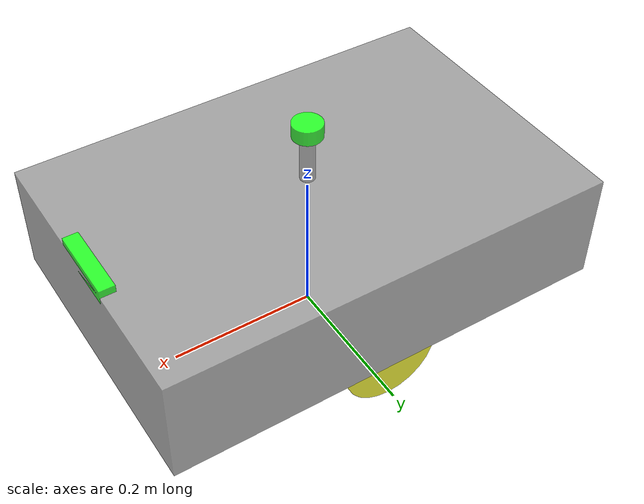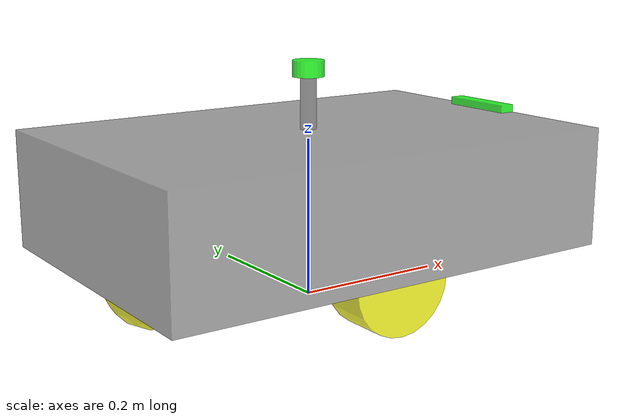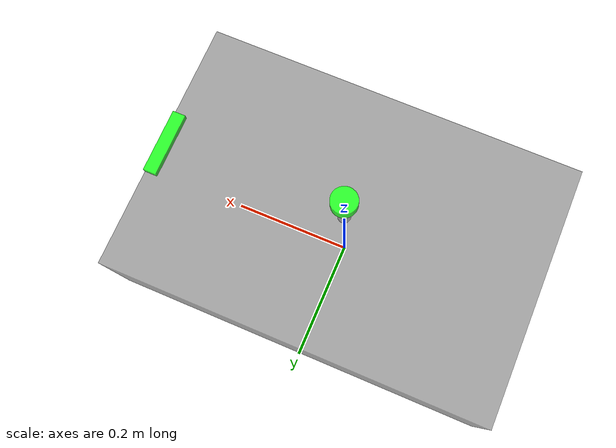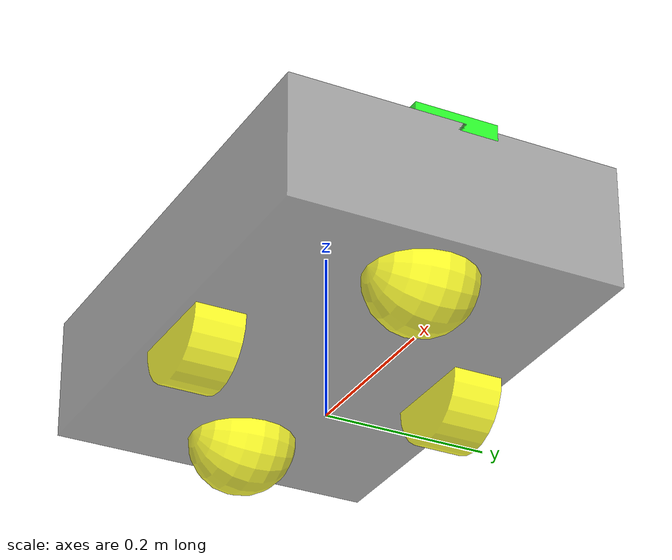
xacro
<?xml version="1.0"?>
<robot xmlns:xacro="http://www.ros.org/wiki/xacro" name="robot_name">
    <xacro:arg name="prefix" default=""/>
    <xacro:arg name="namespace" default=""/>
    <xacro:arg name="controller_params" default="$(find amr_description)/config/amr_ros2_controller.yaml"/>

    <!-- 几何参数：默认值与 config/amr_v1.yaml 一致，生成脚本从规格文件覆盖传入 -->
    <xacro:arg name="car_length" default="0.6"/>
    <xacro:arg name="car_width" default="0.4"/>
    <xacro:arg name="car_height" default="0.15"/>
    <xacro:arg name="wheel_radius" default="0.064"/>
    <xacro:arg name="wheel_length" default="0.06"/>
    <xacro:arg name="wheel_mass" default="1.0"/>

    <!-- 将 xacro arg 转换成 property，供后续表达式使用 -->
    <xacro:property name="prefix" value="$(arg prefix)"/>
    <xacro:property name="namespace" value="$(arg namespace)"/>
    <xacro:property name="controller_params" value="$(arg controller_params)"/>

    <xacro:property name="car_length" value="$(arg car_length)"/>
    <xacro:property name="car_width" value="$(arg car_width)"/>
    <xacro:property name="car_height" value="$(arg car_height)"/>
    <xacro:property name="wheel_radius" value="$(arg wheel_radius)"/>
    <xacro:property name="wheel_length" value="$(arg wheel_length)"/>
    <xacro:property name="wheel_mass" value="$(arg wheel_mass)"/>

    <!--基础部分-->
    <xacro:include filename="$(find amr_description)/urdf/base.urdf.xacro"/>
    <!--传感器部分-->
    <xacro:include filename="$(find amr_description)/urdf/sensor/imu.urdf.xacro"/>
    <xacro:include filename="$(find amr_description)/urdf/sensor/camera.urdf.xacro"/>
    <xacro:include filename="$(find amr_description)/urdf/sensor/laser.urdf.xacro"/>
    <!--执行器部分-->
    <xacro:include filename="$(find amr_description)/urdf/actuator/wheel.urdf.xacro"/>
    <xacro:include filename="$(find amr_description)/urdf/actuator/caster.urdf.xacro"/>
    <!--插件部分-->
    <xacro:include filename="$(find amr_description)/urdf/plugins/gazebo_sensor_plugin.xacro"/>
    <xacro:include filename="$(find amr_description)/urdf/amr.ros2_control.xacro"/>

    <!-- PI 值 -->
    <xacro:property name="PI" value="3.1415927"/>
    <!-- 轮胎关节平移量（由几何参数推导，勿手改） -->
    <xacro:property name="wheel_joint_y" value="${car_width / 2 - wheel_length / 2 - 0.01}"/>
    <xacro:property name="wheel_joint_z" value="${-car_height / 2}"/>

    <!-- 全局材质 -->
    <material name="gray">
        <color rgba="0.5 0.5 0.5 0.7"/>
    </material>
    <material name="black">
        <color rgba="0.0 0.0 0.0 0.5"/>
    </material>
    <material name="red">
        <color rgba="1.0 0.0 0.0 0.5"/>
    </material>
     <material name="yellow">
        <color rgba="1.0 1.0 0.0 0.8"/>
    </material>

    <!-- 调用底盘，统一使用全局尺寸 -->
    <xacro:base_xacro length="${car_length}" width="${car_width}" height="${car_height}" wheel_radius="${wheel_radius}" prefix="${prefix}"/>
    <!-- 调用传感器模块 -->
    <xacro:imu_xacro imu_name="imu" length="0.02" width="0.02" height="0.02" xyz="0 0 0.02" prefix="${prefix}"/>
    <xacro:camera_xacro length="0.02" width="0.1" height="0.02" xyz="${car_length / 2 - 0.01} 0 ${car_height / 2}" prefix="${prefix}"/>
    <xacro:laser_xacro radius="0.02" length="0.02" xyz="0 0 0.1" prefix="${prefix}"/>
    <!-- 调用执行器模块 -->
    <xacro:wheel_xacro wheel_name="left" radius="${wheel_radius}" length="${wheel_length}" xyz="0 ${wheel_joint_y} ${wheel_joint_z}" prefix="${prefix}" mass="${wheel_mass}"/>
    <xacro:wheel_xacro wheel_name="right" radius="${wheel_radius}" length="${wheel_length}" xyz="0 ${-wheel_joint_y} ${wheel_joint_z}" prefix="${prefix}" mass="${wheel_mass}"/>
    <xacro:caster_xacro caster_name="front" radius="${wheel_radius}" xyz="${car_length / 2 - wheel_radius - 0.02} 0 ${wheel_joint_z}" prefix="${prefix}"/>
    <xacro:caster_xacro caster_name="back" radius="${wheel_radius}" xyz="${-(car_length / 2 - wheel_radius - 0.02)} 0 ${wheel_joint_z}" prefix="${prefix}"/>
    <!-- 调用插件模块 -->
    <xacro:gazebo_sensor_plugin prefix="${prefix}" namespace="${namespace}"/>
    <xacro:amr_ros2_control left_joint_name="${prefix}left_wheel_joint" right_joint_name="${prefix}right_wheel_joint" prefix="${prefix}" namespace="${namespace}" controller_params="${controller_params}"/>
</robot>

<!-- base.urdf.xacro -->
<robot xmlns:xacro="http://www.ros.org/wiki/xacro">
    <xacro:include filename="$(find amr_description)/urdf/common_inertia.xacro"/>
    <!-- 声明 base 模块 -->
    <xacro:macro name="base_xacro" params="length width height wheel_radius prefix">
        <link name="${prefix}base_footprint"/>
        <link name="${prefix}base_link">
            <visual>
                <geometry>
                    <box size="${length} ${width} ${height}"/>
                </geometry>
                <origin xyz="0.0 0.0 0.0" rpy="0 0 0"/>
                <material name="gray"/>
            </visual>
            <collision>
                <geometry>
                    <box size="${length} ${width} ${height}"/>
                </geometry>
                <origin xyz="0.0 0.0 0.0" rpy="0 0 0"/>
                <material name="gray"/>
            </collision>
            <xacro:box_inertia m="${20.0}" l="${length}" w="${width}" h="${height}"/>
        </link>
        <joint name="${prefix}base_link_joint" type="fixed">
            <parent link="${prefix}base_footprint"/>
            <child link="${prefix}base_link"/>
            <origin xyz="0.0 0.0 ${height / 2 + wheel_radius - 0.001}"/>
        </joint>
        <gazebo reference="${prefix}base_link">
            <material>Gazebo/Orange</material>
        </gazebo>
    </xacro:macro>
</robot>

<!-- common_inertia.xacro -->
<robot xmlns:xacro="http://ros.org/wiki/xacro">
    <!-- 长方体惯性：l(x),w(y),h(z)，几何中心为原点 -->
    <xacro:macro name="box_inertia" params="m l w h">
        <inertial>
            <mass value="${m}" />
            <inertia
                ixx="${(m/12) * (h*h + w*w) }"
                ixy="0.0" ixz="0.0"
                iyy="${(m/12) * (l*l + h*h) }"
                iyz="0.0"
                izz="${(m/12) * (l*l + w*w) }"
            />
        </inertial>
    </xacro:macro>

    <!-- 圆柱体惯性：默认沿Z轴伸展；r半径 h高度(轴向长度) -->
    <xacro:macro name="cylinder_inertia" params="m r h">
        <inertial>
            <mass value="${m}" />
            <inertia
                ixx="${(m/12) * (3*r*r + h*h)}"
                ixy="0" ixz="0"
                iyy="${(m/12) * (3*r*r + h*h)}"
                iyz="0"
                izz="${(m/2) * r*r }"
            />
        </inertial>
    </xacro:macro>

    <!-- 球体惯性 -->
    <xacro:macro name="sphere_inertia" params="m r">
        <inertial>
            <mass value="${m}" />
            <inertia
                ixx="${(2.0/5.0) * m * r*r }"
                ixy="0.0" ixz="0.0"
                iyy="${(2.0/5.0) * m * r*r}"
                iyz="0.0"
                izz="${(2.0/5.0) * m * r*r}"
            />
        </inertial>
    </xacro:macro>
</robot>

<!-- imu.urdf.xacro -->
<robot xmlns:xacro="http://www.ros.org/wiki/xacro">
    <xacro:include filename="$(find amr_description)/urdf/common_inertia.xacro"/>
    <!-- 声明 IMU 模块 -->
    <xacro:macro name="imu_xacro" params="imu_name length width height xyz prefix">
        <link name="${prefix}${imu_name}_link">
            <visual>
                <geometry>
                    <box size="${length} ${width} ${height}"/>
                </geometry>
                <origin xyz="0.0 0.0 0.0" rpy="0 0 0"/>
                <material name="red"/>
            </visual>
            <collision>
                <geometry>
                    <box size="${length} ${width} ${height}"/>
                </geometry>
                <origin xyz="0.0 0.0 0.0" rpy="0 0 0"/>
                <material name="red"/>
            </collision>
             <xacro:box_inertia m="${1.0}" l="${length}" w="${width}" h="${height}"/>
        </link>
        <joint name="${prefix}${imu_name}_joint" type="fixed">
            <parent link="${prefix}base_link"/>
            <child link="${prefix}${imu_name}_link"/>
            <origin xyz="${xyz}" rpy="0.0 0.0 0.0"/>
        </joint>
    </xacro:macro>
</robot>

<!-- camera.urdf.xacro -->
<robot xmlns:xacro="http://www.ros.org/wiki/xacro">
    <xacro:include filename="$(find amr_description)/urdf/common_inertia.xacro"/>
    <xacro:macro name="camera_xacro" params="length width height xyz prefix">
        <link name="${prefix}camera_link">
            <visual>
                <geometry>
                    <box size="${length} ${width} ${height}"/>
                </geometry>
                <material name="green">
                    <color rgba="0.0 1.0 0.0 0.8"/>
                </material>
            </visual>
            <collision>
                <geometry>
                    <box size="${length} ${width} ${height}"/>
                </geometry>
                <material name="green">
                    <color rgba="0.0 1.0 0.0 0.8"/>
                </material>
            </collision>
             <xacro:box_inertia m="${0.6}" l="${length}" w="${width}" h="${height}"/>
        </link>
        <joint name="${prefix}camera_joint" type="fixed">
            <parent link="${prefix}base_link"/>
            <child link="${prefix}camera_link"/>
            <origin xyz="${xyz}"/>
        </joint>
        <link name="${prefix}camera_optical_link"></link>
        <joint name="${prefix}camera_optical_joint" type="fixed">
            <parent link="${prefix}camera_link"/>
            <child link="${prefix}camera_optical_link"/>
            <origin xyz="0 0 0" rpy="${-PI / 2} 0.0 ${-PI / 2} "/>
        </joint>
    </xacro:macro>
</robot>

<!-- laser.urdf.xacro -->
<robot xmlns:xacro="http://www.ros.org/wiki/xacro">
    <xacro:include filename="$(find amr_description)/urdf/common_inertia.xacro"/>
    <xacro:macro name="laser_xacro" params="radius length xyz prefix">
        <link name="${prefix}laser_cylinder_link">
            <visual>
                <geometry>
                    <cylinder radius="0.01" length="0.1"/>
                </geometry>
                <material name="black">
                    <color rgba="0.0 0.0 0.0 0.5"/>
                </material>
            </visual>
            <collision>
                <geometry>
                    <cylinder radius="0.01" length="0.1"/>
                </geometry>
                <material name="black">
                    <color rgba="0.0 0.0 0.0 0.5"/>
                </material>
            </collision>
            <xacro:cylinder_inertia m="${0.1}" r="0.01" h="0.1"/>
        </link>
        <joint name="${prefix}claser_cylinder_joint" type="fixed">
            <parent link="${prefix}base_link"/>
            <child link="${prefix}laser_cylinder_link"/>
            <origin xyz="${xyz}"/>
        </joint>
        <link name="${prefix}laser_link">
            <visual>
                <geometry>
                    <cylinder radius="${radius}" length="${length}"/>
                </geometry>
                <material name="green">
                    <color rgba="0.0 1.0 0.0 0.8"/>
                </material>
            </visual>
            <collision>
                <geometry>
                    <cylinder radius="${radius}" length="${length}"/>
                </geometry>
                <material name="green">
                    <color rgba="0.0 1.0 0.0 0.8"/>
                </material>
            </collision>
            <xacro:cylinder_inertia m="${0.2}" r="${radius}" h="${length}"/>
        </link>
        <joint name="${prefix}laser_joint" type="fixed">
            <parent link="${prefix}laser_cylinder_link"/>
            <child link="${prefix}laser_link"/>
            <origin xyz="0 0 0.05"/>
        </joint>
        <gazebo reference="${prefix}laser_cylinder_link">
            <material>Gazebo/Black</material>
        </gazebo>
        <gazebo reference="${prefix}laser_link">
            <material>Gazebo/Black</material>
        </gazebo>
    </xacro:macro>
</robot>

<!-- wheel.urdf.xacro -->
<robot xmlns:xacro="http://www.ros.org/wiki/xacro">
    <xacro:include filename="$(find amr_description)/urdf/common_inertia.xacro"/>
    <xacro:macro name="wheel_xacro" params="wheel_name radius length xyz prefix mass">
        <link name="${prefix}${wheel_name}_wheel_link">
            <visual>
                <geometry>
                    <cylinder radius="${radius}" length="${length}"/>
                </geometry>
                <origin xyz="0.0 0.0 0.0" rpy="${PI / 2} 0.0 0.0"/>
                <material name="yellow"/>
            </visual>
            <collision>
                <geometry>
                    <cylinder radius="${radius}" length="${length}"/>
                </geometry>
                <origin xyz="0.0 0.0 0.0" rpy="${PI / 2} 0.0 0.0"/>
                <material name="yellow"/>
            </collision>
            <xacro:cylinder_inertia m="${mass}" r="${radius}" h="${length}"/>
        </link>
        <joint name="${prefix}${wheel_name}_wheel_joint" type="continuous">
            <parent link="${prefix}base_link"/>
            <child link="${prefix}${wheel_name}_wheel_link"/>
            <origin xyz="${xyz}"/>
            <axis xyz="0 1 0"/>
        </joint>
        <gazebo reference="${prefix}${wheel_name}_wheel_link">
            <material>Gazebo/Yellow</material>
            <mu1 value="20.0"/>
            <mu2 value="20.0"/>
            <kp value="100000000.0"/>
            <kd value="1.0"/>
        </gazebo>
    </xacro:macro>
</robot>

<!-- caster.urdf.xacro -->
<robot xmlns:xacro="http://www.ros.org/wiki/xacro">
    <xacro:include filename="$(find amr_description)/urdf/common_inertia.xacro"/>
    <xacro:macro name="caster_xacro" params="caster_name radius xyz prefix">
        <link name="${prefix}${caster_name}_caster_link">
            <visual>
                <geometry>
                    <sphere radius="${radius}"/>
                </geometry>
                <origin xyz="0.0 0.0 0.0" rpy="${PI / 2} 0.0 0.0"/>
                <material name="yellow"/>
            </visual>
            <collision>
                <geometry>
                    <sphere radius="${radius}"/>
                </geometry>
                <origin xyz="0.0 0.0 0.0" rpy="${PI / 2} 0.0 0.0"/>
                <material name="yellow"/>
            </collision>
            <xacro:sphere_inertia m="${1.5}" r="${radius}"/>
        </link>
        <joint name="${prefix}${caster_name}_caster_joint" type="continuous">
            <parent link="${prefix}base_link"/>
            <child link="${prefix}${caster_name}_caster_link"/>
            <origin xyz="${xyz}"/>
        </joint>
        <gazebo reference="${prefix}${caster_name}_caster_link">
            <material>Gazebo/Yellow</material>
            <mu1 value="0.0"/>
            <mu2 value="0.0"/>
            <kp value="100000000.0"/>
            <kd value="1.0"/>
        </gazebo>
    </xacro:macro>
</robot>
